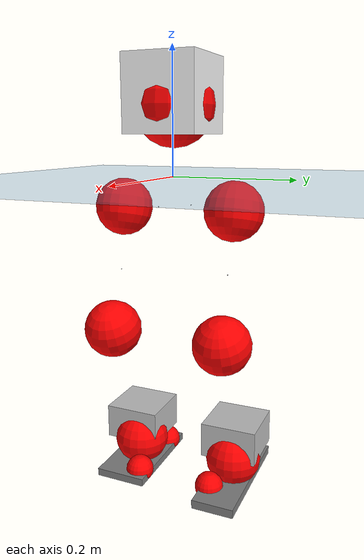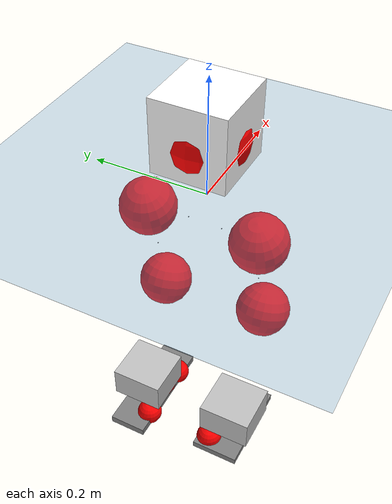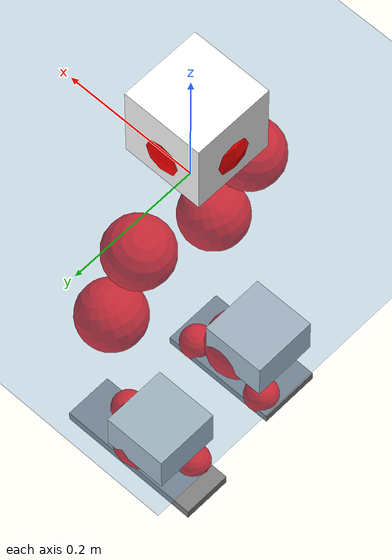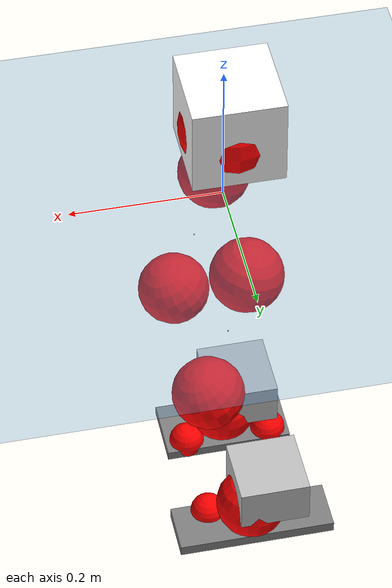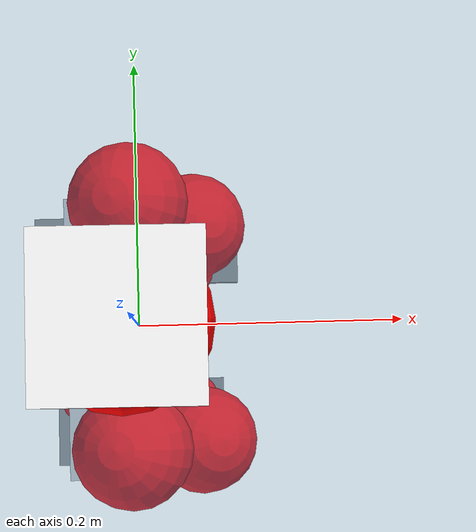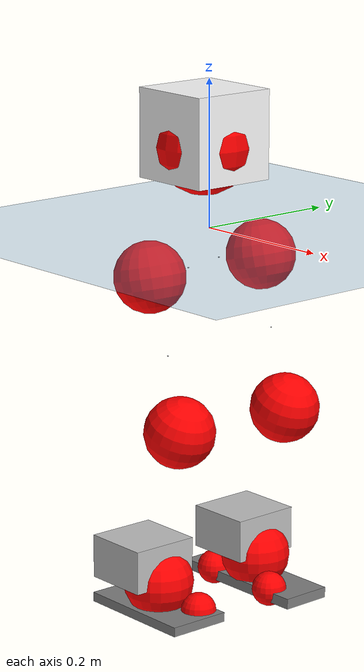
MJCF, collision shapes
<mujoco model="pi_12dof_release_v1">
  <compiler angle="radian" assetdir="assets" balanceinertia="true" inertiafromgeom="false"/>

  <option timestep="0.005" density="1.2" viscosity="2e-05"/>

  <size nkey="1"/>

  <visual>
    <quality shadowsize="8192"/>
    <map shadowclip="0.5"/>
  </visual>

  <default>
    <default class="/">
      <joint armature="0.01" damping="0.01" frictionloss="0.01"/>
      <geom contype="0" conaffinity="0" group="1" solref="-1000 -80"/>
      <site size="0.01 0.005 0.005" group="5"/>
      <general forcelimited="true" biastype="affine" gainprm="20" biasprm="0 -20 -0.5"/>
      <default class="foot">
        <geom size="0.0845 0.036 0.005" type="box" condim="6" group="4" priority="1" friction="0.9 0.2 0.2" solimp="0.015 1 0.005"/>
      </default>
      <default class="reward_collision_sphere">
        <geom group="5" rgba="1 0 0 1"/>
      </default>
    </default>
  </default>

  <asset>
    <texture type="skybox" colorspace="auto" name="//unnamed_texture_0" builtin="gradient" rgb1="0.95 0.95 0.95" rgb2="0.95 0.95 0.95" width="100" height="600"/>
    <texture type="2d" colorspace="auto" name="texplane" builtin="checker" rgb1="0.345 0.575 0.748" rgb2="0.345 0.575 0.748" markrgb="1 1 1" width="512" height="512"/>
    <material name="MatPlane" class="/" texture="texplane" texuniform="true" texrepeat="2 2" specular="0.9"/>
    <mesh name="baselink_1" class="/" file="baselink_1.STL"/>
    <mesh name="r_hip_pitch_link" class="/" file="r_hip_pitch_link.STL"/>
    <mesh name="r_hip_roll_link" class="/" file="r_hip_roll_link.STL"/>
    <mesh name="r_thigh_link" class="/" file="r_thigh_link.STL"/>
    <mesh name="r_calf_link" class="/" file="r_calf_link.STL"/>
    <mesh name="r_ankle_pitch_link" class="/" file="r_ankle_pitch_link.STL"/>
    <mesh name="r_ankle_roll_link" class="/" file="r_ankle_roll_link.STL"/>
    <mesh name="l_hip_pitch_link" class="/" file="l_hip_pitch_link.STL"/>
    <mesh name="l_hip_roll_link" class="/" file="l_hip_roll_link.STL"/>
    <mesh name="l_thigh_link" class="/" file="l_thigh_link.STL"/>
    <mesh name="l_calf_link" class="/" file="l_calf_link.STL"/>
    <mesh name="l_ankle_pitch_link" class="/" file="l_ankle_pitch_link.STL"/>
    <mesh name="l_ankle_roll_link" class="/" file="l_ankle_roll_link.STL"/>
  </asset>

  <worldbody>
    <geom name="floor" class="/" size="100 100 0.125" type="plane" group="0" material="MatPlane"/>
    <light name="toplight_shadow" class="/" pos="0 0 5" dir="0.0990148 0.0990148 -0.990148" type="directional" ambient="0.04 0.04 0.04" diffuse="0.55 0.55 0.55" specular="0.12 0.12 0.12"/>
    <light name="toplight_fill" class="/" pos="0 0 5" dir="0.0990148 0.0990148 -0.990148" type="directional" castshadow="false" ambient="0.04 0.04 0.04" diffuse="0.3 0.3 0.3" specular="0.08 0.08 0.08"/>
    <body name="trunk" pos="-0.0087747 -0.00208557 0.0015059" quat="0.999993 -0.000913468 0.00187344 -0.00303295">
      <inertial pos="0.0101547 -0.00149621 0.0611291" quat="0.697508 0.0109397 0.0173785 0.716283" mass="4.15056" diaginertia="0.00431672 0.022316 0.0377288"/>
      <joint name="//unnamed_joint_0" type="free"/>
      <geom name="//unnamed_geom_1" class="/" type="mesh" density="0" rgba="1 1 1 1" mesh="baselink_1"/>
      <geom name="//unnamed_geom_2" class="/" size="0.0601771 0.0601771 0.0601771" pos="0 0 0.124651" type="box" rgba="1 1 1 1"/>
      <geom name="//unnamed_geom_3" class="reward_collision_sphere" size="0.0661948" pos="0 0 0.10907"/>
      <site name="imu" class="/" pos="-0.0106753 -0.0116589 -0.0346452" size="0.0120354"/>
      <camera name="track" class="/" pos="0 -2.40214 0" quat="0.707107 0.707107 0 0" mode="trackcom"/>
      <camera name="ego_camera" class="/" pos="0.063856 0 0.280465" quat="-0.5 -0.5 0.5 0.5"/>
      <body name="r_hip_pitch_link" pos="0.00139304 -0.0281706 -0.05202" quat="0.992169 -0.000355543 -0.124901 -0.000583738">
        <inertial pos="0.00234322 -0.0620332 -0.00152393" quat="-0.0120858 0.706862 -0.0364646 0.706308" mass="0.668417" diaginertia="4.39245e-05 0.000243006 0.000760947"/>
        <joint name="r_hip_pitch_joint" class="/" pos="0 0 0" axis="-0.00248644 -0.999967 -0.00773052" range="-1.71252 1.28421" armature="0.0119035" damping="0" frictionloss="0.0092779"/>
        <geom name="//unnamed_geom_4" class="/" type="mesh" density="0" rgba="0.75294 0.75294 0.75294 1" mesh="r_hip_pitch_link"/>
        <geom name="//unnamed_geom_5" class="/" size="0.000601771 0.000601771 0.000601771" type="box" rgba="0.75294 0.75294 0.75294 1"/>
        <body name="r_hip_roll_link" pos="-0.00157146 -0.0648545 -0.00241619" quat="0.999995 -0.00183307 0.00242058 0.000315884">
          <inertial pos="-0.00565583 0.00372131 -0.0876548" quat="0.706779 -0.0799905 -0.0818231 0.698119" mass="0.697115" diaginertia="0.00015445 0.000753266 0.0011024"/>
          <joint name="r_hip_roll_joint" class="/" pos="0 0 0" axis="-0.999738 -0.014393 -0.0178138" stiffness="0.0144173" range="-0.133952 0.583647" armature="0.0123598" damping="0.0411035" frictionloss="0.00855837"/>
          <geom name="//unnamed_geom_6" class="/" type="mesh" density="0" rgba="0.75294 0.75294 0.75294 1" mesh="r_hip_roll_link"/>
          <geom name="//unnamed_geom_7" class="/" size="0.000601771 0.000601771 0.000601771" type="box" rgba="0.75294 0.75294 0.75294 1"/>
          <geom name="//unnamed_geom_8" class="reward_collision_sphere" size="0.0481417"/>
          <body name="r_thigh_link" pos="0.00254844 0.00739908 -0.106" quat="0.999999 -0.0011291 -0.00109856 0.00030471">
            <inertial pos="0.00563942 0.000886327 -0.0778409" quat="0.738482 0.67427 0.000264954 -0.00208217" mass="0.193444" diaginertia="5.12884e-05 0.000200667 0.000474184"/>
            <joint name="r_thigh_joint" class="/" pos="0 0 0" axis="0.000212334 -0.0023292 -0.999997" stiffness="0.0127746" range="-0.196352 0.534954" armature="0.0135335" damping="0.0109245" frictionloss="0.017362"/>
            <geom name="//unnamed_geom_9" class="/" type="mesh" density="0" rgba="0.75294 0.75294 0.75294 1" mesh="r_thigh_link"/>
            <geom name="//unnamed_geom_10" class="/" size="0.000601771 0.000601771 0.000601771" type="box" rgba="0.75294 0.75294 0.75294 1"/>
            <body name="r_calf_link" pos="0.00260837 -0.00235656 -0.101897" quat="0.947426 0.000105616 0.319967 0.00239845">
              <inertial pos="-0.00242245 0.005162 -0.109542" quat="0.999491 -0.00761426 0.0265637 0.0159434" mass="1.44097" diaginertia="0.00172077 0.00902267 0.00172524"/>
              <joint name="r_calf_joint" class="/" pos="0 0 0" axis="-0.0235304 -0.999511 0.0205929" stiffness="0.0301924" range="-1.81575 0.607689" armature="0.0110252" damping="0.016087" frictionloss="0.00913125"/>
              <geom name="//unnamed_geom_11" class="/" type="mesh" density="0" rgba="0.75294 0.75294 0.75294 1" mesh="r_calf_link"/>
              <geom name="//unnamed_geom_12" class="/" size="0.000601771 0.000601771 0.000601771" type="box" rgba="0.75294 0.75294 0.75294 1"/>
              <geom name="//unnamed_geom_13" class="reward_collision_sphere" size="0.0481417"/>
              <body name="r_ankle_pitch_link" pos="-0.00121542 0.0087827 -0.216872" quat="0.979965 0.000709375 -0.199166 0.000318921">
                <inertial pos="0.00151116 0.00904288 -0.00235743" quat="-0.0152937 0.708286 -0.00395504 0.705749" mass="0.300503" diaginertia="0.000136704 0.000564312 0.00104171"/>
                <joint name="r_ankle_pitch_joint" class="/" pos="0 0 0" axis="-0.00409837 -0.999292 -0.0374076" range="-1.3242 0.510406" armature="0.0131683" damping="0.0258505" frictionloss="0.0104784"/>
                <geom name="//unnamed_geom_14" class="/" type="mesh" density="0" rgba="0.75294 0.75294 0.75294 1" mesh="r_ankle_pitch_link"/>
                <geom name="//unnamed_geom_15" class="/" size="0.0469381 0.0481417 0.0300885" type="box" rgba="0.75294 0.75294 0.75294 1"/>
                <body name="r_ankle_roll_link" pos="0.0654053 0.00893177 0.000716054" quat="1 0.000190734 0.000251024 7.89591e-05">
                  <inertial pos="-0.0204582 0.00249444 -0.0219451" quat="0.572537 0.403246 0.448688 0.555224" mass="0.879447" diaginertia="0.00050822 0.00256599 0.00273105"/>
                  <joint name="r_ankle_roll_joint" class="/" pos="0 0 0" axis="-0.999177 0.00165902 0.0405382" range="-0.00686067 0.198181" armature="0.00787895" damping="0" frictionloss="0.0117521"/>
                  <geom name="//unnamed_geom_16" class="/" type="mesh" density="0" rgba="0.75294 0.75294 0.75294 1" mesh="r_ankle_roll_link"/>
                  <geom name="//unnamed_geom_17" class="/" type="mesh" rgba="0.75294 0.75294 0.75294 1" mesh="r_ankle_roll_link"/>
                  <geom name="right_foot" class="foot" size="0.0863214 0.0440898 0.00650316" pos="-0.0434221 0 -0.0685582"/>
                  <geom name="//unnamed_geom_19" class="reward_collision_sphere" size="0.0481417" pos="-0.0425707 0 -0.0311628"/>
                  <geom name="//unnamed_geom_20" class="reward_collision_sphere" size="0.0240708" pos="0.0127712 0.0240214 -0.0623257"/>
                  <geom name="//unnamed_geom_21" class="reward_collision_sphere" size="0.0240708" pos="-0.10217 0.0240214 -0.0623257"/>
                  <site name="right_foot" class="foot" pos="-0.0434221 0 -0.0685582" size="0.0120354"/>
                </body>
              </body>
            </body>
          </body>
        </body>
      </body>
      <body name="l_hip_pitch_link" pos="-0.00215546 0.0284984 -0.0468237" quat="0.992184 0.000908223 -0.124782 8.14297e-05">
        <inertial pos="0.000309481 0.0574496 0.00419249" quat="-0.000968246 0.695817 0.0515119 0.716369" mass="0.625743" diaginertia="6.00317e-05 0.000262679 0.000858978"/>
        <joint name="l_hip_pitch_joint" class="/" pos="0 0 0" axis="0.0277909 0.999071 0.0329258" range="-1.24701 1.74359" armature="0.0122726" damping="0.00179139" frictionloss="0.0117418"/>
        <geom name="//unnamed_geom_22" class="/" type="mesh" density="0" rgba="0.75294 0.75294 0.75294 1" mesh="l_hip_pitch_link"/>
        <geom name="//unnamed_geom_23" class="/" size="0.000601771 0.000601771 0.000601771" type="box" rgba="0.75294 0.75294 0.75294 1"/>
        <body name="l_hip_roll_link" pos="-0.000450614 0.0744721 -0.00672719" quat="0.999999 0.000449876 0.000942096 3.11986e-05">
          <inertial pos="-0.00150167 0.000756226 -0.0929218" quat="0.699151 -0.0752113 -0.0772919 0.706794" mass="0.616257" diaginertia="0.00015403 0.000717057 0.00113897"/>
          <joint name="l_hip_roll_joint" class="/" pos="0 0 0" axis="-1 -0.000653596 -0.000611827" stiffness="0.0448033" range="-0.543751 0.0113018" armature="0.0125584" damping="0.000380795" frictionloss="0.0120708"/>
          <geom name="//unnamed_geom_24" class="/" type="mesh" density="0" rgba="0.75294 0.75294 0.75294 1" mesh="l_hip_roll_link"/>
          <geom name="//unnamed_geom_25" class="/" size="0.000601771 0.000601771 0.000601771" type="box" rgba="0.75294 0.75294 0.75294 1"/>
          <geom name="//unnamed_geom_26" class="reward_collision_sphere" size="0.0481417"/>
          <body name="l_thigh_link" pos="-0.0014288 -0.00144562 -0.100479" quat="1 0.0003575 -0.000333763 -0.000470868">
            <inertial pos="0.00023971 -0.00974504 -0.0732064" quat="0.675727 0.737075 -6.94383e-05 0.0106351" mass="0.196152" diaginertia="5.76216e-05 0.000242782 0.00058921"/>
            <joint name="l_thigh_joint" class="/" pos="0 0 0" axis="-8.29428e-05 -7.17598e-05 -1" range="-0.568848 0.215442" armature="0.0109413" damping="0.0358657" frictionloss="0.0107817"/>
            <geom name="//unnamed_geom_27" class="/" type="mesh" density="0" rgba="0.75294 0.75294 0.75294 1" mesh="l_thigh_link"/>
            <geom name="//unnamed_geom_28" class="/" size="0.000601771 0.000601771 0.000601771" type="box" rgba="0.75294 0.75294 0.75294 1"/>
            <body name="l_calf_link" pos="-0.0010827 0.00183321 -0.111877" quat="0.947477 0.000788106 0.319799 0.0037847">
              <inertial pos="-0.00790369 -8.2942e-05 -0.100607" quat="0.999798 -0.0125012 -0.011994 0.0101821" mass="1.40213" diaginertia="0.00154386 0.00851561 0.00155066"/>
              <joint name="l_calf_joint" class="/" pos="0 0 0" axis="-0.0110267 0.999937 0.00185301" range="-0.690972 1.70741" armature="0.0123616" damping="0.0147329" frictionloss="0.0156587"/>
              <geom name="//unnamed_geom_29" class="/" type="mesh" density="0" rgba="0.75294 0.75294 0.75294 1" mesh="l_calf_link"/>
              <geom name="//unnamed_geom_30" class="/" size="0.000601771 0.000601771 0.000601771" type="box" rgba="0.75294 0.75294 0.75294 1"/>
              <geom name="//unnamed_geom_31" class="reward_collision_sphere" size="0.0481417"/>
              <body name="l_ankle_pitch_link" pos="0.000195907 -0.00127856 -0.209951" quat="0.980055 -0.000167258 -0.198729 -0.00021843">
                <inertial pos="0.0017634 -0.00105693 0.000628256" quat="-0.00140779 0.706439 -0.0013215 0.707771" mass="0.329755" diaginertia="0.000134283 0.000529112 0.00109535"/>
                <joint name="l_ankle_pitch_joint" class="/" pos="0 0 0" axis="0.00600526 0.999949 0.00811747" stiffness="0.0116372" range="-0.507553 1.35714" armature="0.0124129" damping="0.000871334" frictionloss="0.011347"/>
                <geom name="//unnamed_geom_32" class="/" type="mesh" density="0" rgba="0.75294 0.75294 0.75294 1" mesh="l_ankle_pitch_link"/>
                <geom name="//unnamed_geom_33" class="/" size="0.0469381 0.0481417 0.0300885" type="box" rgba="0.75294 0.75294 0.75294 1"/>
                <body name="l_ankle_roll_link" pos="0.0649801 0.00234992 -0.00276642" quat="0.999999 -0.000588618 -0.000697624 -0.000986797">
                  <inertial pos="-0.0160374 0.00144462 -0.0243275" quat="0.564858 0.430618 0.424151 0.561783" mass="0.886121" diaginertia="0.000507011 0.00263954 0.00243496"/>
                  <joint name="l_ankle_roll_joint" class="/" pos="0 0 0" axis="-0.999229 0.0378852 0.0102847" stiffness="0.0303603" range="-0.149415 0.127261" armature="0.0119273" damping="0" frictionloss="0.0124447"/>
                  <geom name="//unnamed_geom_34" class="/" type="mesh" density="0" rgba="0.75294 0.75294 0.75294 1" mesh="l_ankle_roll_link"/>
                  <geom name="//unnamed_geom_35" class="/" type="mesh" rgba="0.75294 0.75294 0.75294 1" mesh="l_ankle_roll_link"/>
                  <geom name="left_foot" class="foot" size="0.106072 0.0354828 0.00737347" pos="-0.0434221 0 -0.0685582"/>
                  <geom name="//unnamed_geom_37" class="reward_collision_sphere" size="0.0481417" pos="-0.0425707 0 -0.0311628"/>
                  <geom name="//unnamed_geom_38" class="reward_collision_sphere" size="0.0240708" pos="0.0127712 -0.0240214 -0.0623257"/>
                  <geom name="//unnamed_geom_39" class="reward_collision_sphere" size="0.0240708" pos="-0.10217 -0.0240214 -0.0623257"/>
                  <site name="left_foot" class="foot" pos="-0.0434221 0 -0.0685582" size="0.0120354"/>
                </body>
              </body>
            </body>
          </body>
        </body>
      </body>
    </body>
  </worldbody>

  <contact>
    <pair class="/" geom1="floor" geom2="right_foot" name="//unnamed_contact_1"/>
    <pair class="/" geom1="floor" geom2="left_foot" name="//unnamed_contact_0"/>
  </contact>

  <actuator>
    <general name="r_hip_pitch_joint" class="/" joint="r_hip_pitch_joint" forcerange="-24.2939 24.2939" gainprm="25.2609" biasprm="0 -25.2609 -0.592957"/>
    <general name="r_hip_roll_joint" class="/" joint="r_hip_roll_joint" forcerange="-22.4581 22.4581" gainprm="25.2609" biasprm="0 -25.2609 -0.592957"/>
    <general name="r_thigh_joint" class="/" joint="r_thigh_joint" forcerange="-23.6846 23.6846" gainprm="25.2609" biasprm="0 -25.2609 -0.592957"/>
    <general name="r_calf_joint" class="/" joint="r_calf_joint" forcerange="-17.2103 17.2103" gainprm="25.2609" biasprm="0 -25.2609 -0.592957"/>
    <general name="r_ankle_pitch_joint" class="/" joint="r_ankle_pitch_joint" forcerange="-26.7635 26.7635" gainprm="25.2609" biasprm="0 -25.2609 -0.592957"/>
    <general name="r_ankle_roll_joint" class="/" joint="r_ankle_roll_joint" forcerange="-31.8464 31.8464" gainprm="25.2609" biasprm="0 -25.2609 -0.592957"/>
    <general name="l_hip_pitch_joint" class="/" joint="l_hip_pitch_joint" forcerange="-25.6672 25.6672" gainprm="25.2609" biasprm="0 -25.2609 -0.592957"/>
    <general name="l_hip_roll_joint" class="/" joint="l_hip_roll_joint" forcerange="-27.3433 27.3433" gainprm="25.2609" biasprm="0 -25.2609 -0.592957"/>
    <general name="l_thigh_joint" class="/" joint="l_thigh_joint" forcerange="-23.3134 23.3134" gainprm="25.2609" biasprm="0 -25.2609 -0.592957"/>
    <general name="l_calf_joint" class="/" joint="l_calf_joint" forcerange="-23.7599 23.7599" gainprm="25.2609" biasprm="0 -25.2609 -0.592957"/>
    <general name="l_ankle_pitch_joint" class="/" joint="l_ankle_pitch_joint" forcerange="-23.3029 23.3029" gainprm="25.2609" biasprm="0 -25.2609 -0.592957"/>
    <general name="l_ankle_roll_joint" class="/" joint="l_ankle_roll_joint" forcerange="-24.5771 24.5771" gainprm="25.2609" biasprm="0 -25.2609 -0.592957"/>
  </actuator>

  <sensor>
    <gyro site="imu" name="imu_angular_velocity"/>
    <velocimeter site="imu" name="imu_linear_velocity"/>
    <framelinvel objtype="site" objname="left_foot" name="left_foot_global_linear_velocity"/>
    <framelinvel objtype="site" objname="right_foot" name="right_foot_global_linear_velocity"/>
  </sensor>

  <keyframe>
    <key name="home" qpos="0 0 0.291 1 0 0 0 0.4 0 0 -0.8 0.4 0 -0.4 0 0 0.8 -0.4 0"/>
  </keyframe>
</mujoco>
